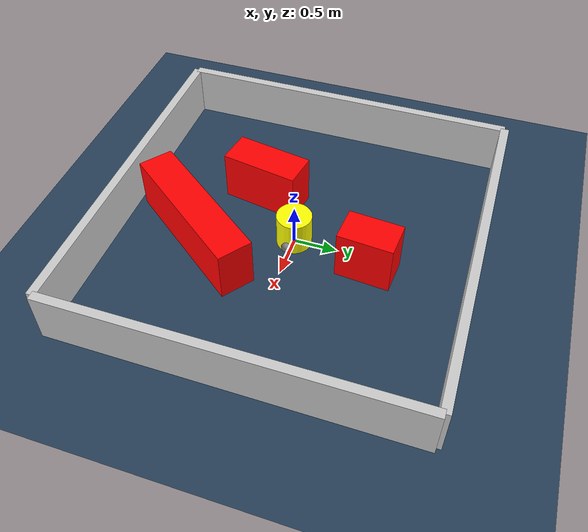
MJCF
<?xml version="1.0" ?>
<mujoco model="generated_environment">
  <option timestep="0.01" integrator="RK4" cone="elliptic"/>
  <default>
    <geom density="1"/>
  </default>
  <asset>
    <texture builtin="gradient" height="3072" rgb1="0.3 0.5 0.7" rgb2="0 0 0" type="skybox" width="512"/>
    <texture builtin="checker" height="300" mark="edge" markrgb="0.8 0.8 0.8" name="groundplane" rgb1="0.2 0.3 0.4" rgb2="0.1 0.2 0.3" type="2d" width="300"/>
    <material name="groundplane" reflectance="0.2" texrepeat="5 5" texture="groundplane" texuniform="true"/>
    <material name="robot" rgba="0.0 1.0 0.0 1"/>
  </asset>
  <worldbody>
    <light dir="0 0 -1" directional="true" pos="0 0 1.5"/>
    <geom condim="4" friction="1.0 0.005 0.001" material="groundplane" name="floor" size="0 0 0.05" type="plane"/>
    <body name="walls">
      <geom name="wall_1" condim="4" pos="-2.0 0.0 0.3" rgba="0.800000011920929 0.800000011920929 0.800000011920929 1.0" size="0.05 2.0 0.3" type="box"/>
      <geom name="wall_2" condim="4" pos="2.0 0.0 0.3" rgba="0.800000011920929 0.800000011920929 0.800000011920929 1.0" size="0.05 2.0 0.3" type="box"/>
      <geom name="wall_3" condim="4" pos="0.0 -2.0 0.3" rgba="0.800000011920929 0.800000011920929 0.800000011920929 1.0" size="2.0 0.05 0.3" type="box"/>
      <geom name="wall_4" condim="4" pos="0.0 2.0 0.3" rgba="0.800000011920929 0.800000011920929 0.800000011920929 1.0" size="2.0 0.05 0.3" type="box"/>
    </body>
    <body name="robot">
      <joint name="joint_x" type="slide" pos="0 0 0" axis="1 0 0"/>
      <joint name="joint_y" type="slide" pos="0 0 0" axis="0 1 0"/>
      <geom name="robot" type="sphere" pos="0.3 0.0 0.2" size="0.05" mass="5." friction="1.0 0.005 0.0001" condim="4" rgba="0.5 0.5 0.5 1.0"/>
      <site name="sensor_ball"/>
    </body>
    <body name="obstacle_movable_1">
      <geom name="obstacle_movable_1" condim="4" pos="0.0 0.0 0.2" euler="0 0 0.0" friction="1.0 0.005 0.001" rgba="1.0 1.0 0.0 1.0" size="0.2 0.2 0.0" type="cylinder" mass="0.1"/>
      <joint type="free"/>
    </body>
    <body name="obstacle_2_static">
      <geom name="obstacle_2_static" condim="4" pos="0.3235124349610943 -1.0516865323150066 0.3" euler="0 0 233.01340332844893" friction="1.0 0.005 0.001" rgba="1 0 0 1" size="0.8801457162157977 0.2 0.3" type="box"/>
    </body>
    <body name="obstacle_3_static">
      <geom name="obstacle_3_static" condim="4" pos="0.15502924872296164 0.8902416656695091 0.3" euler="0 0 85.13067737956011" friction="1.0 0.005 0.001" rgba="1 0 0 1" size="0.30859265474514924 0.2 0.3" type="box"/>
    </body>
    <body name="obstacle_4_static">
      <geom name="obstacle_4_static" condim="4" pos="-0.5972301052578254 -0.5326892649945243 0.3" euler="0 0 259.9795879410951" friction="1.0 0.005 0.001" rgba="1 0 0 1" size="0.44730685937204084 0.2 0.3" type="box"/>
    </body>
  </worldbody>
  <actuator>
    <motor name="actuator_x" joint="joint_x" gear="1" ctrlrange="-1 1"/>
    <motor name="actuator_y" joint="joint_y" gear="1" ctrlrange="-1 1"/>
  </actuator>
</mujoco>
